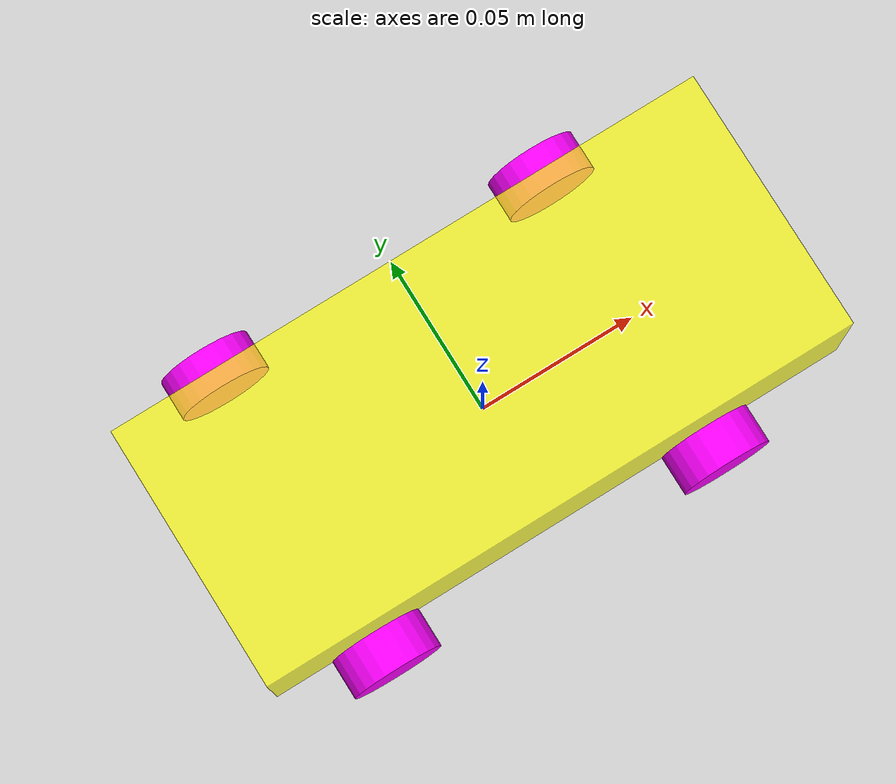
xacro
<?xml version="1.0"?>
<robot xmlns:xacro="http://www.ros.org/wiki/xacro" name="carmodel">

    <!-- creatin macros so that we don't need assign the values again and again -->
    <xacro:property name="box_length" value="0.184" />
    <xacro:property name="box_breadth" value="0.08" />
    <xacro:property name="box_height" value="0.044" />
    <xacro:property name="cylinder_length" value="0.012" />
    <xacro:property name="cylinder_radius" value="0.014" />

    <!-- this is the base link of the model where we attached the gazebo pluging -->
    <link name="robot_footprint"></link>

    <joint name="robot_footprint_joint" type="fixed">
        <origin xyz="0 0 0" rpy="0 0 0" />
        <parent link="robot_footprint"/>
        <child link="body_link" />
    </joint>

    <link name="body_link">
        <visual>
            <geometry>
                <box size="${box_length} ${box_breadth} ${box_height}"/>
            </geometry>
            <origin rpy="0 0 0" xyz="0 0 0.036"/>
            <material name="yellow">
                <color rgba="1 1 0 0.7"/>
            </material>
        </visual>
        <collision>
            <geometry>
                <box size="${box_length} ${box_breadth} ${box_height}"/>
            </geometry>
            <origin rpy="0 0 0" xyz="0 0 0.036"/>
        </collision>
        <inertial>
            <mass value="0.15"/>
            <inertia ixx="0.000446" ixy="0.0" ixz="0.0" iyy="0.000104" iyz="0.0" izz="0.000501"/>
        </inertial>
    </link>

    <joint name="car_wheel1_joint" type="continuous">
        <parent link="body_link"/>
        <child link="car_wheel1_link"/>
        <axis xyz="0 1 0"/>
        <origin xyz="0.048 0.046 0.014"/>
    </joint>

    <link name="car_wheel1_link">
        <visual>
            <geometry>
                <cylinder length="${cylinder_length}" radius="${cylinder_radius}"/>
            </geometry>
            <origin rpy="1.57075 1.57075 0" xyz="0 0 0"/>
            <material name="red">
                <color rgba="1 0 1 1"/>
            </material>
        </visual>
        <collision>
            <geometry>
                <cylinder length="${cylinder_length}" radius="${cylinder_radius}"/>
            </geometry>
            <origin rpy="1.57075 1.57075 0" xyz="0 0 0"/>
        </collision>
        <inertial>
            <mass value="0.02"/>
            <inertia ixx="0.0000012" ixy="0.0" ixz="0.0" iyy="0.0000012" iyz="0.0" izz="0.0000059"/>
        </inertial>
    </link>

    <joint name="car_wheel2_joint" type="continuous">
        <parent link="body_link"/>
        <child link="car_wheel2_link"/>
        <axis xyz="0 1 0"/>
        <origin xyz="0.048 -0.046 0.014"/>
    </joint>

    <link name="car_wheel2_link">
        <visual>
            <geometry>
                <cylinder length="${cylinder_length}" radius="${cylinder_radius}"/>
            </geometry>
            <origin rpy="1.57075 1.57075 0" xyz="0 0 0"/>
            <material name="red">
                <color rgba="1 0 1 1"/>
            </material>
        </visual>
        <collision>
            <geometry>
                <cylinder length="${cylinder_length}" radius="${cylinder_radius}"/>
            </geometry>
            <origin rpy="1.57075 1.57075 0" xyz="0 0 0"/>
        </collision>
        <inertial>
            <mass value="0.02"/>
            <inertia ixx="0.0000012" ixy="0.0" ixz="0.0" iyy="0.0000012" iyz="0.0" izz="0.0000059"/>
        </inertial>
    </link>

    <joint name="car_wheel3_joint" type="continuous">
        <parent link="body_link"/>
        <child link="car_wheel3_link"/>
        <axis xyz="0 1 0"/>
        <origin xyz="-0.06 -0.046 0.014"/>
    </joint>

    <link name="car_wheel3_link">
        <visual>
            <geometry>
                <cylinder length="${cylinder_length}" radius="${cylinder_radius}"/>
            </geometry>
            <origin rpy="1.57075 1.57075 0" xyz="0 0 0"/>
            <material name="red">
                <color rgba="1 0 1 1"/>
            </material>
        </visual>
        <collision>
            <geometry>
                <cylinder length="${cylinder_length}" radius="${cylinder_radius}"/>
            </geometry>
            <origin rpy="1.57075 1.57075 0" xyz="0 0 0"/>
        </collision>
        <inertial>
            <mass value="0.02"/>
            <inertia ixx="0.0000012" ixy="0.0" ixz="0.0" iyy="0.0000012" iyz="0.0" izz="0.0000059"/>
        </inertial>
    </link>

    <joint name="car_wheel4_joint" type="continuous">
        <parent link="body_link"/>
        <child link="car_wheel4_link"/>
        <axis xyz="0 1 0"/>
        <origin xyz="-0.06 0.046 0.014"/>
    </joint>

    <link name="car_wheel4_link">
        <visual>
            <geometry>
                <cylinder length="${cylinder_length}" radius="${cylinder_radius}"/>
            </geometry>
            <origin rpy="1.57075 1.57075 0" xyz="0 0 0"/>
            <material name="red">
                <color rgba="1 0 1 1"/>
            </material>
        </visual>
        <collision>
            <geometry>
                <cylinder length="${cylinder_length}" radius="${cylinder_radius}"/>
            </geometry>
            <origin rpy="1.57075 1.57075 0" xyz="0 0 0"/>
        </collision>
        <inertial>
            <mass value="0.02"/>
            <inertia ixx="0.0000012" ixy="0.0" ixz="0.0" iyy="0.0000012" iyz="0.0" izz="0.0000059"/>
        </inertial>
    </link>

    <!-- including the pluging file as a macro here -->
    <xacro:include filename="$(find rc_car_pkg)/gazebo/carmodel.gazebo" />

</robot>
